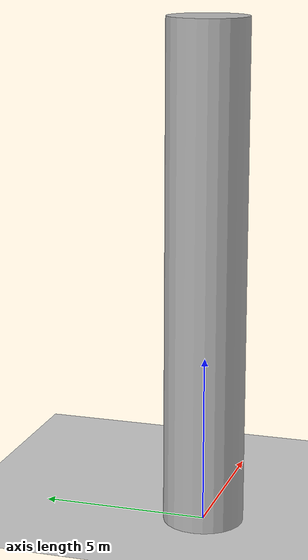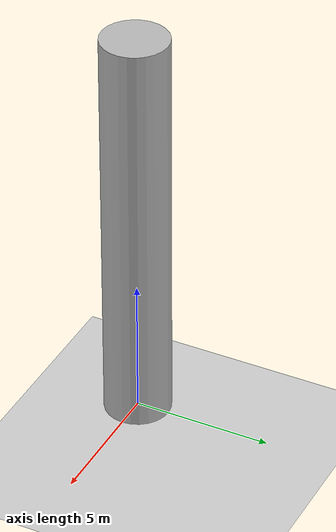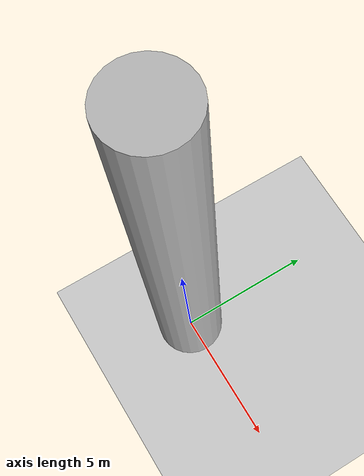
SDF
<?xml version="1.0"?>
<sdf version="1.6">
  <world name="PW_mt">
    <include><uri>model://sun</uri></include>
    <include><uri>model://ground_plane</uri></include>
    <include><uri>model://observer_rangefinder</uri></include>
    <physics name="default_physics" type="ode">
      <max_step_size>0.004</max_step_size>
      <real_time_update_rate>250</real_time_update_rate>
    </physics>
    <model name="formation_cylinder">
      <static>true</static>
      <pose>0 0 7.5 0 0 0</pose>
      <link name="cylinder">
        <collision name="collision"><geometry><cylinder><radius>1.2</radius><length>15</length></cylinder></geometry></collision>
        <visual name="visual"><geometry><cylinder><radius>1.2</radius><length>15</length></cylinder></geometry></visual>
      </link>
    </model>
    <gui><camera name="user_camera"><pose>23 -24 23 0 0.55 2.35</pose></camera></gui>
  </world>
</sdf>

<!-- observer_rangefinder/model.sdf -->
<sdf version="1.6">
  <model name="observer_rangefinder">
    <static>false</static>
    <allow_auto_disable>false</allow_auto_disable>
    <link name="sensor_link">
      <kinematic>true</kinematic>
      <gravity>false</gravity>
      <sensor name="downward_ray" type="ray">
        <always_on>true</always_on>
        <visualize>false</visualize>
        <update_rate>30</update_rate>
        <ray>
          <scan>
            <horizontal>
              <samples>5</samples><resolution>1</resolution>
              <min_angle>-0.015</min_angle><max_angle>0.015</max_angle>
            </horizontal>
            <vertical>
              <samples>5</samples><resolution>1</resolution>
              <min_angle>-0.015</min_angle><max_angle>0.015</max_angle>
            </vertical>
          </scan>
          <range><min>0.10</min><max>36.0</max><resolution>0.005</resolution></range>
        </ray>
        <plugin name="range_publisher" filename="libMrsGazeboCommonResources_RangefinderPlugin.so">
          <alwaysOn>true</alwaysOn>
          <updateRate>30</updateRate>
          <topicName>/uav1/native_rangefinder</topicName>
          <frameName>uav1/native_rangefinder</frameName>
          <fov>0.03</fov>
          <radiation>infrared</radiation>
          <gaussianNoise>0.01</gaussianNoise>
          <parentFrameName>uav1/fcu</parentFrameName>
          <x>0</x><y>0.0625</y><z>-0.009</z>
          <roll>1.5707963267948966</roll><pitch>1.5707963267948966</pitch><yaw>0</yaw>
        </plugin>
      </sensor>
    </link>
  </model>
</sdf>
